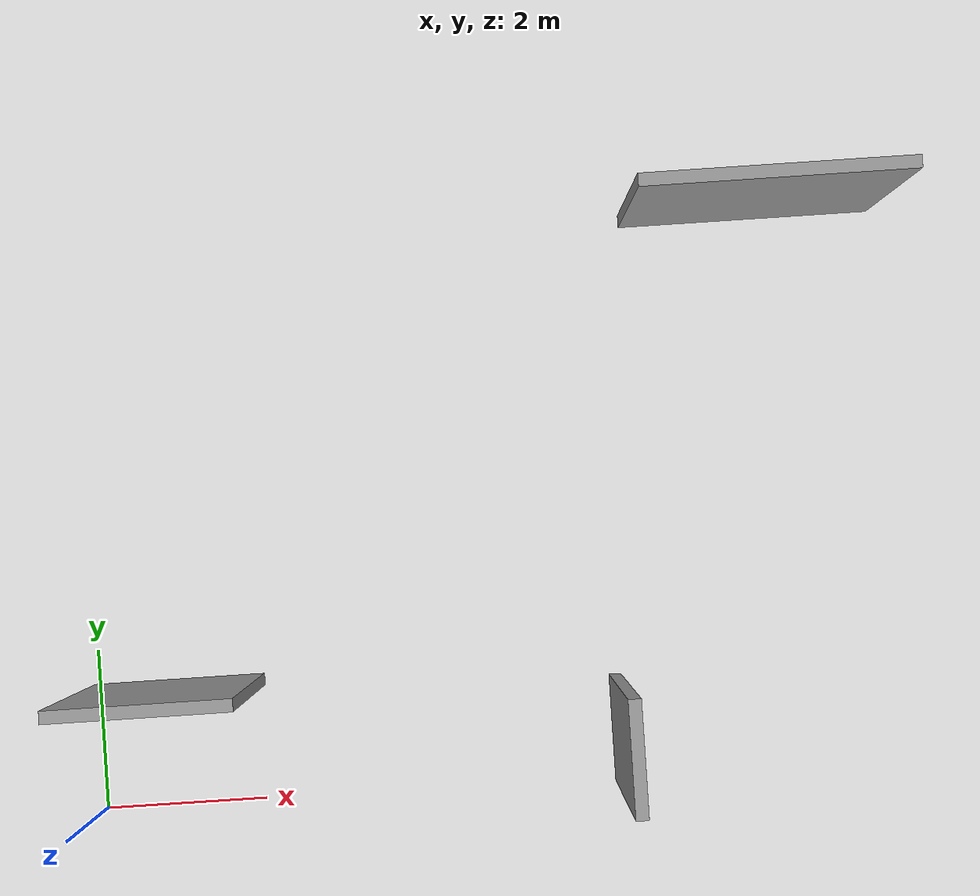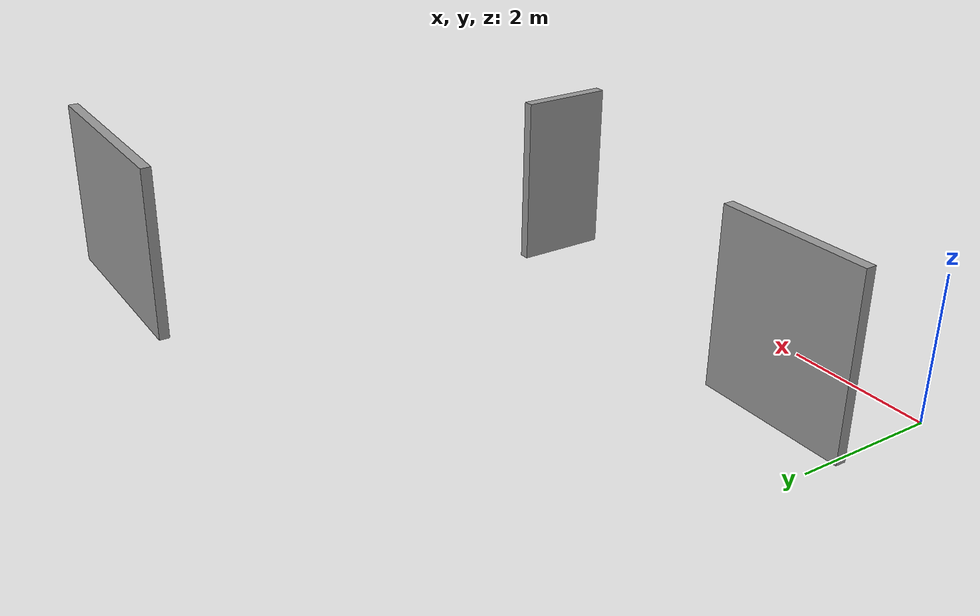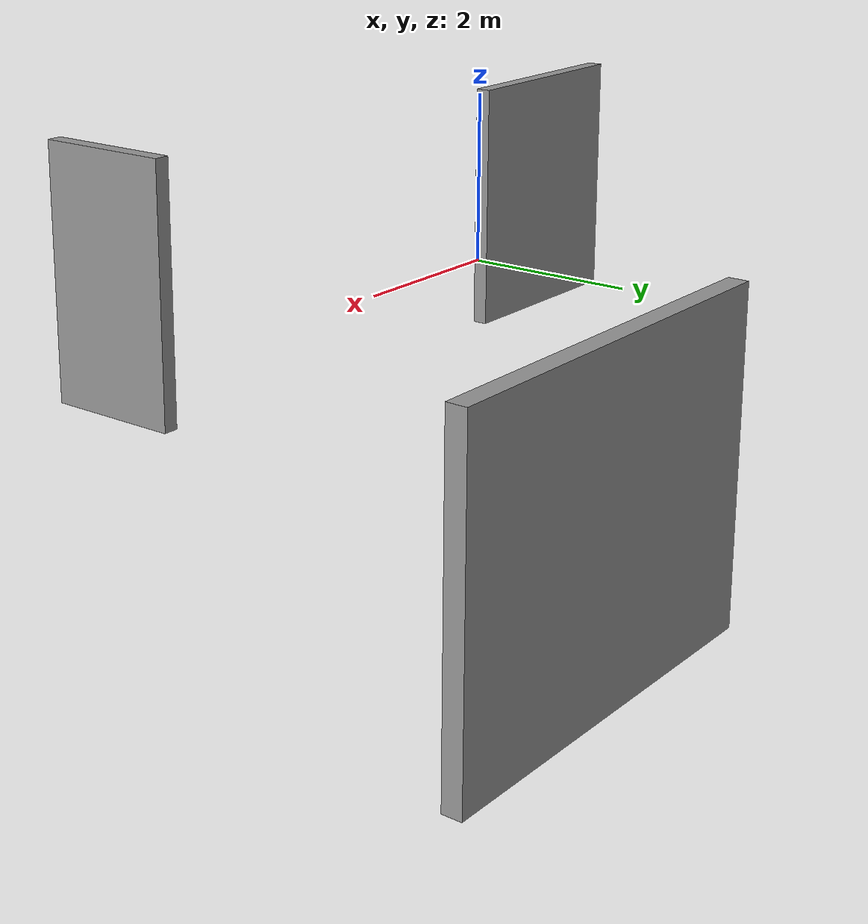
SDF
<?xml version='1.0'?>
<sdf version='1.6'>
  <model name='assymetry'>
    <pose frame=''>5 3.5 0 0 -0 0</pose>
    <link name='Wall_3'>
      <collision name='Wall_3_Collision'>
        <geometry>
          <box>
            <size>1.35 0.15 2.5</size>
          </box>
        </geometry>
        <pose frame=''>0 0 1.25 0 -0 0</pose>
      </collision>
      <visual name='Wall_3_Visual'>
        <pose frame=''>0 0 1.25 0 -0 0</pose>
        <geometry>
          <box>
            <size>1.35 0.15 2.5</size>
          </box>
        </geometry>
        <material>
          <script>
            <uri>file://media/materials/scripts/gazebo.material</uri>
            <name>Gazebo/Grey</name>
          </script>
          <ambient>0 0 0 1</ambient>
        </material>
        <meta>
          <layer>0</layer>
        </meta>
      </visual>
      <pose frame=''>1.51 -2.9 0 0 -0 1.5708</pose>
    </link>
    <link name='Wall_4'>
      <collision name='Wall_4_Collision'>
        <geometry>
          <box>
            <size>2.15 0.15 2.5</size>
          </box>
        </geometry>
        <pose frame=''>0 0 1.25 0 -0 0</pose>
      </collision>
      <visual name='Wall_4_Visual'>
        <pose frame=''>0 0 1.25 0 -0 0</pose>
        <geometry>
          <box>
            <size>2.15 0.15 2.5</size>
          </box>
        </geometry>
        <material>
          <script>
            <uri>file://media/materials/scripts/gazebo.material</uri>
            <name>Gazebo/Grey</name>
          </script>
          <ambient>1 1 1 1</ambient>
        </material>
        <meta>
          <layer>0</layer>
        </meta>
      </visual>
      <pose frame=''>-4 -2 0 0 -0 0</pose>
    </link>
    <link name='Wall_6'>
      <collision name='Wall_6_Collision'>
        <geometry>
          <box>
            <size>3.15 0.15 2.5</size>
          </box>
        </geometry>
        <pose frame=''>0 0 1.25 0 -0 0</pose>
      </collision>
      <visual name='Wall_6_Visual'>
        <pose frame=''>0 0 1.25 0 -0 0</pose>
        <geometry>
          <box>
            <size>3.15 0.15 2.5</size>
          </box>
        </geometry>
        <material>
          <script>
            <uri>file://media/materials/scripts/gazebo.material</uri>
            <name>Gazebo/Grey</name>
          </script>
          <ambient>0 0 0 1</ambient>
        </material>
        <meta>
          <layer>0</layer>
        </meta>
      </visual>
      <pose frame=''>3.5 3.5 0 0 -0 0</pose>
    </link>
    <static>1</static>
  </model>
</sdf>
